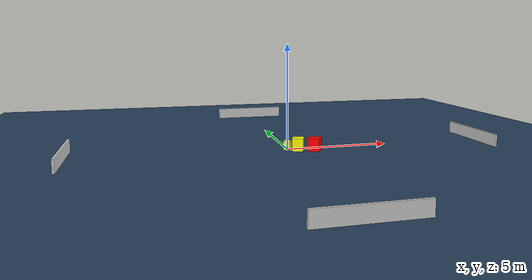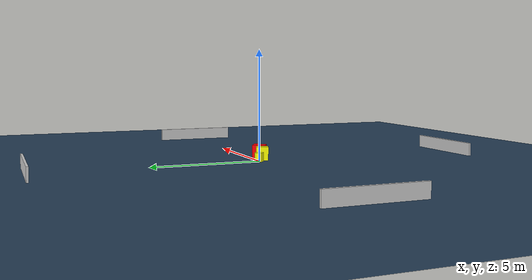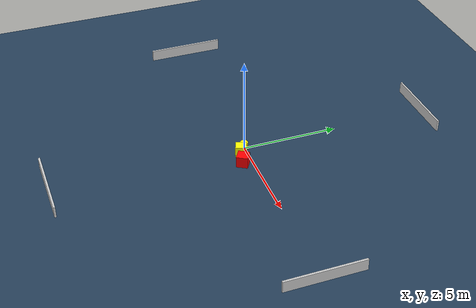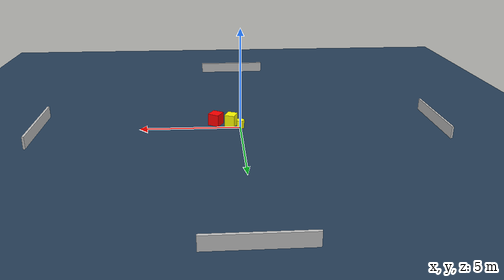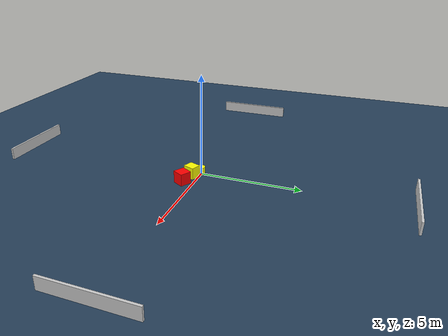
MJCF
<?xml version="1.0" ?>
<mujoco model="generated_environment">
  <option timestep="0.01" integrator="RK4" cone="elliptic"/>
  <default>
    <geom density="1"/>
  </default>
  <asset>
    <texture builtin="gradient" height="3072" name="skybox" rgb1="0.3 0.5 0.7" rgb2="0 0 0" type="skybox" width="512"/>
    <texture builtin="checker" height="300" name="groundplane" rgb1="0.2 0.3 0.4" rgb2="0.1 0.2 0.3" type="2d" width="300"/>
    <material name="groundplane" reflectance="0.2" texrepeat="5 5" texture="groundplane"/>
  </asset>
  <worldbody>
    <light dir="0 0 -1" directional="true" pos="0 0 1.5"/>
    <geom condim="3" friction="0.5 0.005 0.001" material="groundplane" name="floor" pos="0 0 0" size="0 0 0.05" type="plane"/>
    <body name="walls">
      <geom name="wall_1" condim="4" pos="-10.0 0.0 0.3" rgba="0.800000011920929 0.800000011920929 0.800000011920929 1.0" size="0.05 2.0 0.3" type="box"/>
      <geom name="wall_2" condim="4" pos="10.0 0.0 0.3" rgba="0.800000011920929 0.800000011920929 0.800000011920929 1.0" size="0.05 2.0 0.3" type="box"/>
      <geom name="wall_3" condim="4" pos="0.0 -10.0 0.3" rgba="0.800000011920929 0.800000011920929 0.800000011920929 1.0" size="2.0 0.05 0.3" type="box"/>
      <geom name="wall_4" condim="4" pos="0.0 10.0 0.3" rgba="0.800000011920929 0.800000011920929 0.800000011920929 1.0" size="2.0 0.05 0.3" type="box"/>
    </body>
    <body name="robot">
      <joint name="joint_x" type="slide" pos="0 0 0" axis="1 0 0"/>
      <joint name="joint_y" type="slide" pos="0 0 0" axis="0 1 0"/>
      <geom name="robot" type="cylinder" pos="0.0 0.0 0.2" size="0.2 0.2 0.0" mass="5.0" friction="1.0 0.005 0.0001" condim="4" rgba="1.0 1.0 0.0 1.0"/>
    </body>
    <body name="obstacle_1_movable">
      <geom name="obstacle_1_movable" condim="4" pos="0.44674082880708493 -0.32455546728397394 0.3" euler="0 0 158.14153324672142" friction="0.0 0.005 0.001" rgba="1.0 1.0 0.0 1.0" size="0.25513209193078806 0.28225307301328406 0.3" type="box" mass="0.1"/>
      <joint type="free"/>
    </body>
    <body name="obstacle_2_static">
      <geom name="obstacle_2_static" condim="4" pos="1.2167760428355996 -0.5065942789282284 0.3" euler="0 0 58.94004235076753" friction="0.0 0.005 0.001" rgba="1.0 0.0 0.0 1.0" size="0.29505398127326543 0.2872177312597144 0.3" type="box"/>
    </body>
  </worldbody>
  <actuator>
    <motor name="actuator_x" joint="joint_x" gear="1" ctrlrange="-1 1"/>
    <motor name="actuator_y" joint="joint_y" gear="1" ctrlrange="-1 1"/>
  </actuator>
</mujoco>
